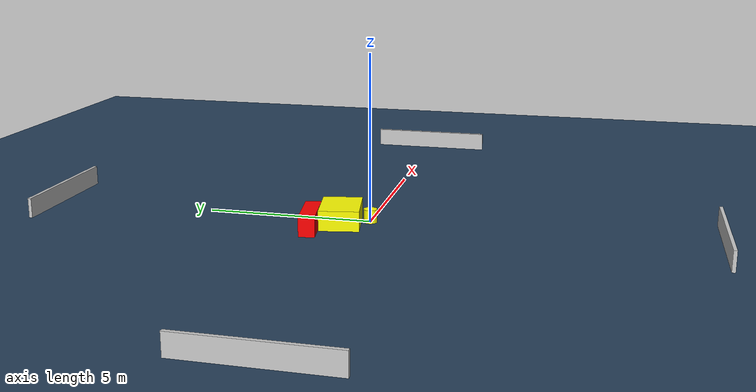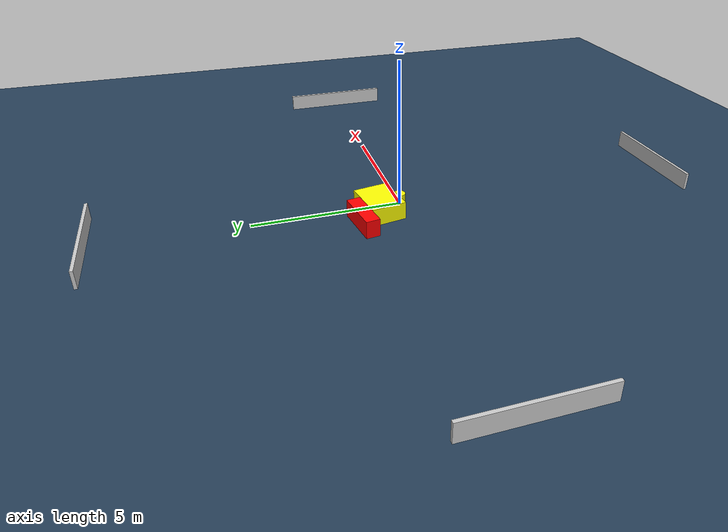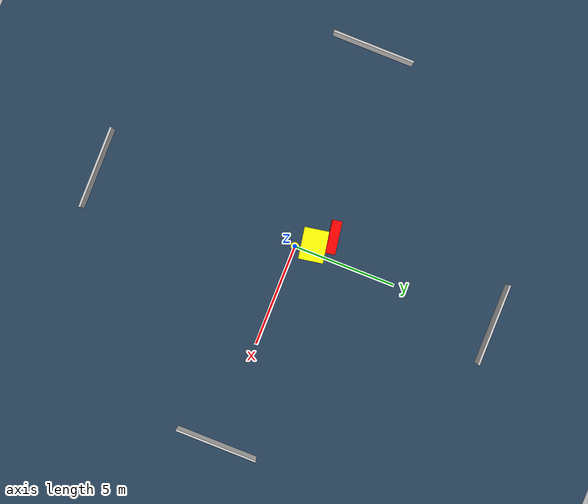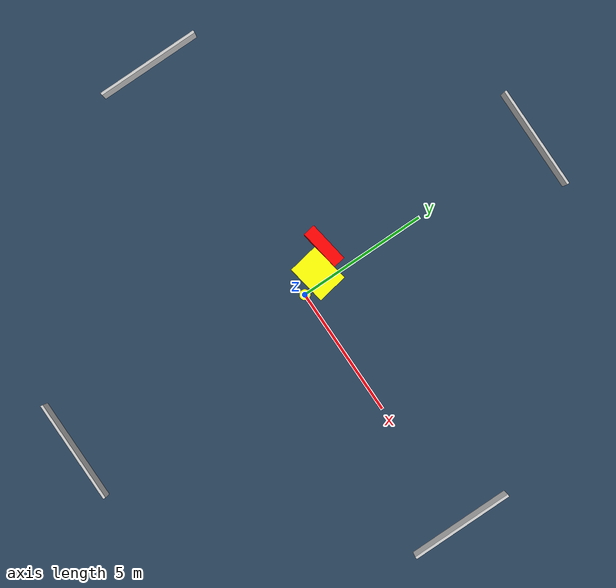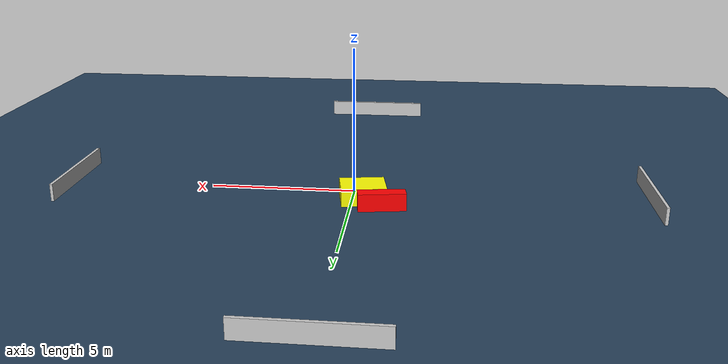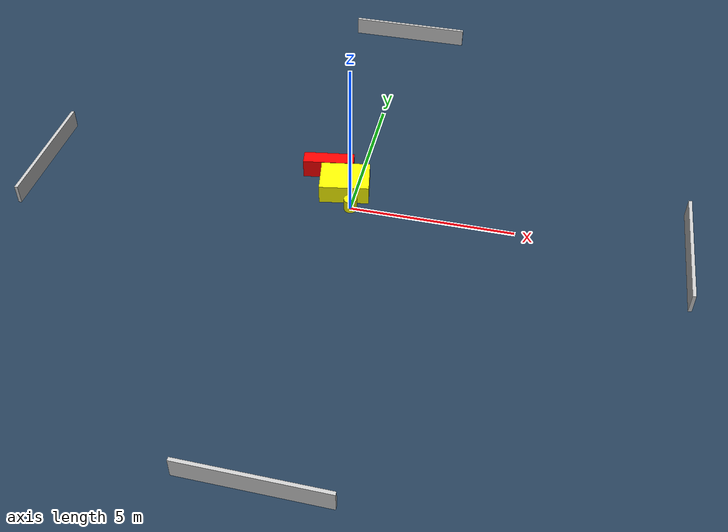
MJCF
<?xml version="1.0" ?>
<mujoco model="generated_environment">
  <option timestep="0.01" integrator="RK4" cone="elliptic"/>
  <default>
    <geom density="1"/>
  </default>
  <asset>
    <texture builtin="gradient" height="3072" name="skybox" rgb1="0.3 0.5 0.7" rgb2="0 0 0" type="skybox" width="512"/>
    <texture builtin="checker" height="300" name="groundplane" rgb1="0.2 0.3 0.4" rgb2="0.1 0.2 0.3" type="2d" width="300"/>
    <material name="groundplane" reflectance="0.2" texrepeat="5 5" texture="groundplane"/>
  </asset>
  <worldbody>
    <light dir="0 0 -1" directional="true" pos="0 0 1.5"/>
    <geom condim="3" friction="0.5 0.005 0.001" material="groundplane" name="floor" pos="0 0 0" size="0 0 0.05" type="plane"/>
    <body name="walls">
      <geom name="wall_1" condim="4" pos="-10.0 0.0 0.3" rgba="0.800000011920929 0.800000011920929 0.800000011920929 1.0" size="0.05 2.0 0.3" type="box"/>
      <geom name="wall_2" condim="4" pos="10.0 0.0 0.3" rgba="0.800000011920929 0.800000011920929 0.800000011920929 1.0" size="0.05 2.0 0.3" type="box"/>
      <geom name="wall_3" condim="4" pos="0.0 -10.0 0.3" rgba="0.800000011920929 0.800000011920929 0.800000011920929 1.0" size="2.0 0.05 0.3" type="box"/>
      <geom name="wall_4" condim="4" pos="0.0 10.0 0.3" rgba="0.800000011920929 0.800000011920929 0.800000011920929 1.0" size="2.0 0.05 0.3" type="box"/>
    </body>
    <body name="robot">
      <joint name="joint_x" type="slide" pos="0 0 0" axis="1 0 0"/>
      <joint name="joint_y" type="slide" pos="0 0 0" axis="0 1 0"/>
      <geom name="robot" type="cylinder" pos="0.0 0.0 0.2" size="0.2 0.2 0.0" mass="5.0" friction="1.0 0.005 0.0001" condim="4" rgba="1.0 1.0 0.0 1.0"/>
    </body>
    <body name="obstacle_1_movable">
      <geom name="obstacle_1_movable" condim="4" pos="-0.3637683949655843 0.8052760765993594 0.3" euler="0 0 9.96817286808624" friction="0.0 0.005 0.001" rgba="1.0 1.0 0.0 1.0" size="0.7613245564684417 0.5918163400231398 0.3" type="box" mass="0.1"/>
      <joint type="free"/>
    </body>
    <body name="obstacle_2_static">
      <geom name="obstacle_2_static" condim="4" pos="-1.0506809596222177 1.5404980432660504 0.3" euler="0 0 8.999783985170424" friction="0.0 0.005 0.001" rgba="1.0 0.0 0.0 1.0" size="0.7952621312916928 0.2371196175554287 0.3" type="box"/>
    </body>
  </worldbody>
  <actuator>
    <motor name="actuator_x" joint="joint_x" gear="1" ctrlrange="-1 1"/>
    <motor name="actuator_y" joint="joint_y" gear="1" ctrlrange="-1 1"/>
  </actuator>
</mujoco>
